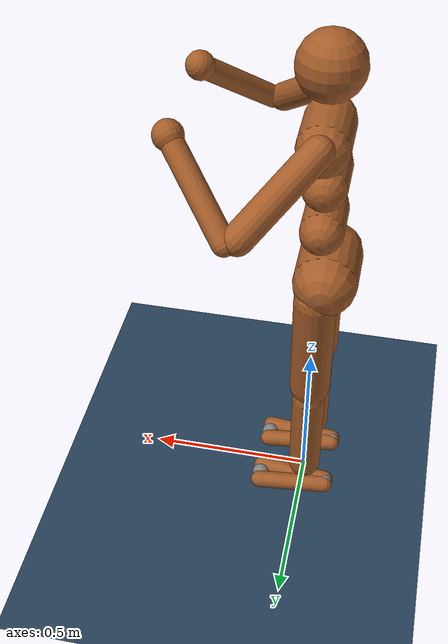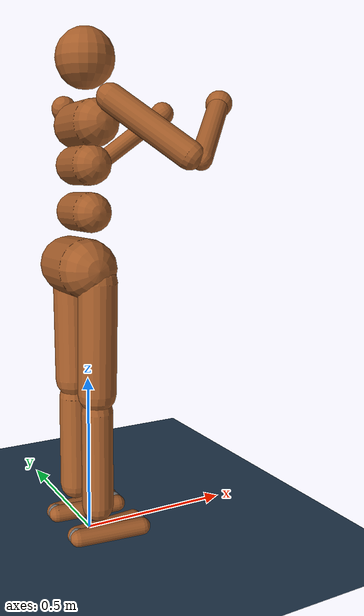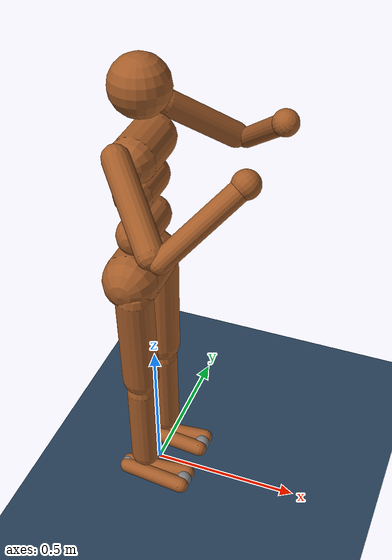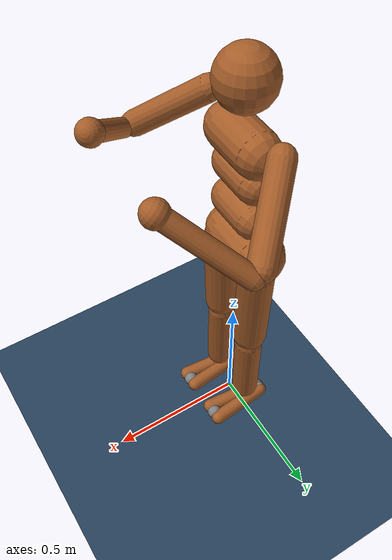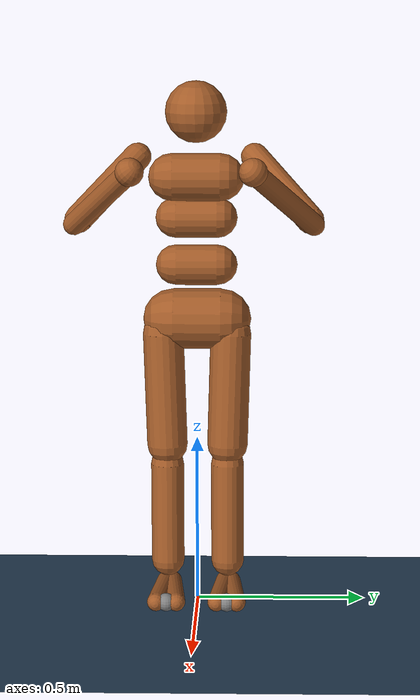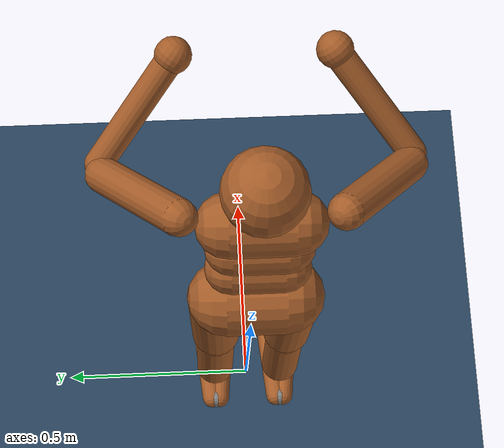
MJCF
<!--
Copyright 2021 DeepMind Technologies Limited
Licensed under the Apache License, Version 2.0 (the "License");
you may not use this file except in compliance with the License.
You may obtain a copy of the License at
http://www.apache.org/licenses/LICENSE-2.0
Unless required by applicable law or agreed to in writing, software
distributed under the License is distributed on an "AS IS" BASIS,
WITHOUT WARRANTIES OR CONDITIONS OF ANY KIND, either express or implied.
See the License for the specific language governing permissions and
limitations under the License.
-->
<mujoco model="Humanoid">
  <option timestep="0.005" density="1000" viscosity="0.009"/>

  <visual>
    <map force="0.1" zfar="30"/>
    <rgba haze="0.15 0.25 0.35 1"/>
    <global offwidth="2560" offheight="1440" elevation="-20" azimuth="120"/>
  </visual>

  <statistic center="0 0 0.7"/>

  <asset>
    <texture type="skybox" builtin="gradient" rgb1=".3 .5 .7" rgb2="0 0 0" width="32" height="512"/>
    <texture name="body" type="cube" builtin="flat" mark="cross" width="128" height="128" rgb1="0.8 0.6 0.4" rgb2="0.8 0.6 0.4" markrgb="1 1 1"/>
    <material name="body" texture="body" texuniform="true" rgba="0.8 0.6 .4 1"/>
    <texture name="grid" type="2d" builtin="checker" width="512" height="512" rgb1=".1 .2 .3" rgb2=".2 .3 .4"/>
    <material name="grid" texture="grid" texrepeat="1 1" texuniform="true" reflectance=".2"/>
  </asset>

  <default>
    <motor ctrlrange="-1 1" ctrllimited="true"/>
    <default class="body">

      <!-- geoms -->
      <geom type="capsule" condim="1" friction=".7" solimp=".9 .99 .003" solref=".015 1" material="body" group="1" fluidshape="ellipsoid"/>
      <default class="thigh">
        <geom size=".06" fluidshape="ellipsoid"/>
      </default>
      <default class="shin">
        <geom fromto="0 0 0 0 0 -.3"  size=".049" fluidshape="ellipsoid"/>
      </default>
      <default class="foot">
        <geom size=".027" fluidshape="ellipsoid"/>
        <default class="foot1">
          <geom fromto="-.07 -.01 0 .14 -.03 0" fluidshape="ellipsoid"/>
        </default>
        <default class="foot2">
          <geom fromto="-.07 .01 0 .14  .03 0" fluidshape="ellipsoid"/>
        </default>
      </default>
      <default class="arm_upper">
        <geom size=".04" fluidshape="ellipsoid"/>
      </default>
      <default class="arm_lower">
        <geom size=".031" fluidshape="ellipsoid"/>
      </default>
      <default class="hand">
        <geom type="sphere" size=".04" fluidshape="ellipsoid"/>
      </default>

      <!-- joints -->
      <joint type="hinge" damping=".2" stiffness="1" armature=".01" limited="true" solimplimit="0 .99 .01"/>
      <default class="joint_big">
        <joint damping="5" stiffness="10"/>
        <default class="hip_x">
          <joint range="-30 10"/>
        </default>
        <default class="hip_z">
          <joint range="-60 35"/>
        </default>
        <default class="hip_y">
          <joint axis="0 1 0" range="-150 20"/>
        </default>
        <default class="joint_big_stiff">
          <joint stiffness="20"/>
        </default>
      </default>
      <default class="knee">
        <joint pos="0 0 .02" axis="0 -1 0" range="-160 2"/>
      </default>
      <default class="ankle">
        <joint range="-50 50"/>
        <default class="ankle_y">
          <joint pos="0 0 .08" axis="0 1 0" stiffness="6"/>
        </default>
        <default class="ankle_x">
          <joint pos="0 0 .04" stiffness="3"/>
        </default>
      </default>
      <default class="shoulder">
        <joint range="-85 60"/>
      </default>
      <default class="elbow">
        <joint range="-100 50" stiffness="0"/>
      </default>
    </default>
  </default>

  <worldbody>
    <geom name="floor" size="0 0 .05" type="plane" material="grid" condim="3"/>
    <light name="spotlight" mode="targetbodycom" target="torso" diffuse=".8 .8 .8" specular="0.3 0.3 0.3" pos="0 -6 4" cutoff="30"/>
    <light name="top" pos="0 0 2" mode="trackcom"/>
    <body name="torso" pos="0 0 1.282" childclass="body" gravcomp="1.02">
      <camera name="back" pos="-3 0 1" xyaxes="0 -1 0 1 0 2" mode="trackcom"/>
      <camera name="side" pos="0 -3 1" xyaxes="1 0 0 0 1 2" mode="trackcom"/>
      <freejoint name="root"/>
      <geom name="torso" fromto="0 -.07 0 0 .07 0" size=".07" fluidshape="ellipsoid"/>
      <geom name="waist_upper" fromto="-.01 -.06 -.12 -.01 .06 -.12" size=".06" fluidshape="ellipsoid"/>
      <body name="head" pos="0 0 .19" gravcomp="1.02">
        <geom name="head" type="sphere" size=".09" fluidshape="ellipsoid"/>
        <camera name="egocentric" pos=".09 0 0" xyaxes="0 -1 0 .1 0 1" fovy="80"/>
      </body>
      <body name="waist_lower" pos="-.01 0 -.26" gravcomp="1.02">
        <geom name="waist_lower" fromto="0 -.06 0 0 .06 0" size=".06" fluidshape="ellipsoid"/>
        <joint name="abdomen_z" pos="0 0 .065" axis="0 0 1" range="-45 45" class="joint_big_stiff"/>
        <joint name="abdomen_y" pos="0 0 .065" axis="0 1 0" range="-75 30" class="joint_big"/>
        <body name="pelvis" pos="0 0 -.165" gravcomp="1.02">
          <joint name="abdomen_x" pos="0 0 .1" axis="1 0 0" range="-35 35" class="joint_big"/>
          <geom name="butt" fromto="-.02 -.07 0 -.02 .07 0" size=".09" fluidshape="ellipsoid"/>
          <body name="thigh_right" pos="0 -.1 -.04" gravcomp="1.02">
            <joint name="hip_x_right" axis="1 0 0" class="hip_x"/>
            <joint name="hip_z_right" axis="0 0 1" class="hip_z"/>
            <joint name="hip_y_right" class="hip_y"/>
            <geom name="thigh_right" fromto="0 0 0 0 .01 -.34" class="thigh"/>
            <body name="shin_right" pos="0 .01 -.4" gravcomp="1.02">
              <joint name="knee_right" class="knee"/>
              <geom name="shin_right" class="shin"/>
              <body name="foot_right" pos="0 0 -.39" gravcomp="1.02">
                <joint name="ankle_y_right" class="ankle_y"/>
                <joint name="ankle_x_right" class="ankle_x" axis="1 0 .5"/>
                <geom name="foot1_right" class="foot1"/>
                <geom name="foot2_right" class="foot2"/>
                <site name="sp2" pos="-.07 0 0" type="sphere" size=".027"/>
                <site name="sp3" pos=".14 0 0" type="sphere" size=".027"/>
              </body>
            </body>
          </body>
          <body name="thigh_left" pos="0 .1 -.04" gravcomp="1.02">
            <joint name="hip_x_left" axis="-1 0 0" class="hip_x"/>
            <joint name="hip_z_left" axis="0 0 -1" class="hip_z"/>
            <joint name="hip_y_left" class="hip_y"/>
            <geom name="thigh_left" fromto="0 0 0 0 -.01 -.34" class="thigh"/>
            <body name="shin_left" pos="0 -.01 -.4" gravcomp="1.02">
              <joint name="knee_left" class="knee"/>
              <geom name="shin_left" fromto="0 0 0 0 0 -.3" class="shin"/>
              <body name="foot_left" pos="0 0 -.39" gravcomp="1.02">
                <joint name="ankle_y_left" class="ankle_y"/>
                <joint name="ankle_x_left" class="ankle_x" axis="-1 0 -.5"/>
                <geom name="foot1_left" class="foot1"/>
                <geom name="foot2_left" class="foot2"/>
                <site name="sp0" pos="-.07 0 0" type="sphere" size=".027"/>
                <site name="sp1" pos=".14 0 0" type="sphere" size=".027"/>
              </body>
            </body>
          </body>
        </body>
      </body>
      <body name="upper_arm_right" pos="0 -.17 .06" gravcomp="1.02">
        <joint name="shoulder1_right" axis="2 1 1"  class="shoulder"/>
        <joint name="shoulder2_right" axis="0 -1 1" class="shoulder"/>
        <geom name="upper_arm_right" fromto="0 0 0 .16 -.16 -.16" class="arm_upper"/>
        <body name="lower_arm_right" pos=".18 -.18 -.18" gravcomp="1.02">
          <joint name="elbow_right" axis="0 -1 1" class="elbow"/>
          <geom name="lower_arm_right" fromto=".01 .01 .01 .17 .17 .17" class="arm_lower"/>
          <body name="hand_right" pos=".18 .18 .18" gravcomp="1.02">
            <geom name="hand_right" zaxis="1 1 1" class="hand"/>
          </body>
        </body>
      </body>
      <body name="upper_arm_left" pos="0 .17 .06" gravcomp="1.02">
        <joint name="shoulder1_left" axis="-2 1 -1" class="shoulder"/>
        <joint name="shoulder2_left" axis="0 -1 -1"  class="shoulder"/>
        <geom name="upper_arm_left" fromto="0 0 0 .16 .16 -.16" class="arm_upper"/>
        <body name="lower_arm_left" pos=".18 .18 -.18" gravcomp="1.02">
          <joint name="elbow_left" axis="0 -1 -1" class="elbow"/>
          <geom name="lower_arm_left" fromto=".01 -.01 .01 .17 -.17 .17" class="arm_lower"/>
          <body name="hand_left" pos=".18 -.18 .18" gravcomp="1.02">
            <geom name="hand_left" zaxis="1 -1 1" class="hand"/>
          </body>
        </body>
      </body>
    </body>
  </worldbody>

  <contact>
    <exclude body1="waist_lower" body2="thigh_right"/>
    <exclude body1="waist_lower" body2="thigh_left"/>
  </contact>

  <tendon>
    <fixed name="hamstring_right" limited="true" range="-0.3 2">
      <joint joint="hip_y_right" coef=".5"/>
      <joint joint="knee_right" coef="-.5"/>
    </fixed>
    <fixed name="hamstring_left" limited="true" range="-0.3 2">
      <joint joint="hip_y_left" coef=".5"/>
      <joint joint="knee_left" coef="-.5"/>
    </fixed>
  </tendon>

  <actuator>
    <motor name="abdomen_z"       gear="40"  joint="abdomen_z"/>
    <motor name="abdomen_y"       gear="40"  joint="abdomen_y"/>
    <motor name="abdomen_x"       gear="40"  joint="abdomen_x"/>
    <motor name="hip_x_right"     gear="40"  joint="hip_x_right"/>
    <motor name="hip_z_right"     gear="40"  joint="hip_z_right"/>
    <motor name="hip_y_right"     gear="120" joint="hip_y_right"/>
    <motor name="knee_right"      gear="80"  joint="knee_right"/>
    <motor name="ankle_y_right"   gear="20"  joint="ankle_y_right"/>
    <motor name="ankle_x_right"   gear="20"  joint="ankle_x_right"/>
    <motor name="hip_x_left"      gear="40"  joint="hip_x_left"/>
    <motor name="hip_z_left"      gear="40"  joint="hip_z_left"/>
    <motor name="hip_y_left"      gear="120" joint="hip_y_left"/>
    <motor name="knee_left"       gear="80"  joint="knee_left"/>
    <motor name="ankle_y_left"    gear="20"  joint="ankle_y_left"/>
    <motor name="ankle_x_left"    gear="20"  joint="ankle_x_left"/>
    <motor name="shoulder1_right" gear="20"  joint="shoulder1_right"/>
    <motor name="shoulder2_right" gear="20"  joint="shoulder2_right"/>
    <motor name="elbow_right"     gear="40"  joint="elbow_right"/>
    <motor name="shoulder1_left"  gear="20"  joint="shoulder1_left"/>
    <motor name="shoulder2_left"  gear="20"  joint="shoulder2_left"/>
    <motor name="elbow_left"      gear="40"  joint="elbow_left"/>
  </actuator>

  <keyframe>
    <!--
    The values below are split into rows for readibility:
      torso position
      torso orientation
      spinal
      right leg
      left leg
      arms
    -->
    <key name="squat"
         qpos="0 0 0.596
               0.988015 0 0.154359 0
               0 0.4 0
               -0.25 -0.5 -2.5 -2.65 -0.8 0.56
               -0.25 -0.5 -2.5 -2.65 -0.8 0.56
               0 0 0 0 0 0"/>
    <key name="stand_on_left_leg"
         qpos="0 0 1.21948
               0.971588 -0.179973 0.135318 -0.0729076
               -0.0516 -0.202 0.23
               -0.24 -0.007 -0.34 -1.76 -0.466 -0.0415
               -0.08 -0.01 -0.37 -0.685 -0.35 -0.09
               0.109 -0.067 -0.7 -0.05 0.12 0.16"/>
    <key name="prone"
         qpos="0.4 0 0.0757706
               0.7325 0 0.680767 0
               0 0.0729 0
               0.0077 0.0019 -0.026 -0.351 -0.27 0
               0.0077 0.0019 -0.026 -0.351 -0.27 0
               0.56 -0.62 -1.752
               0.56 -0.62 -1.752"/>
    <key name="supine"
         qpos="-0.4 0 0.08122
               0.722788 0 -0.69107 0
               0 -0.25 0
               0.0182 0.0142 0.3 0.042 -0.44 -0.02
               0.0182 0.0142 0.3 0.042 -0.44 -0.02
               0.186 -0.73 -1.73
               0.186 -0.73 -1.73"/>
  </keyframe>
</mujoco>
